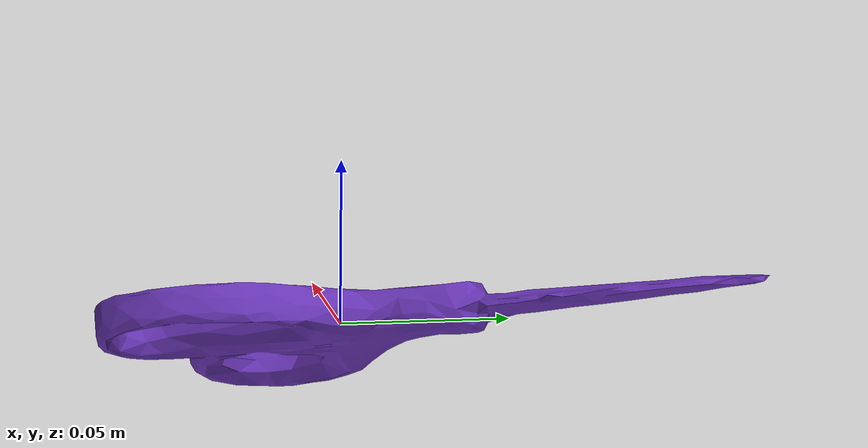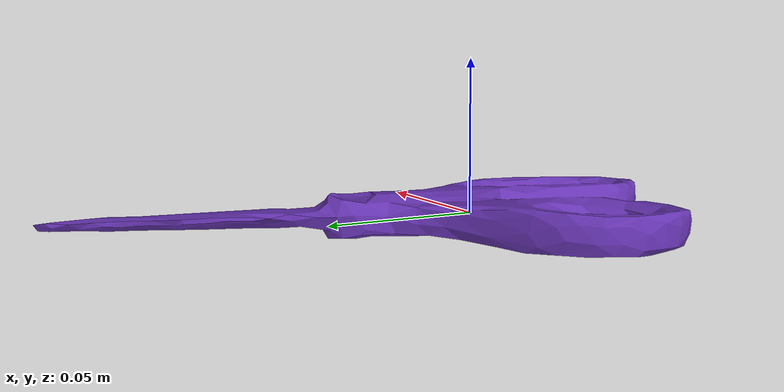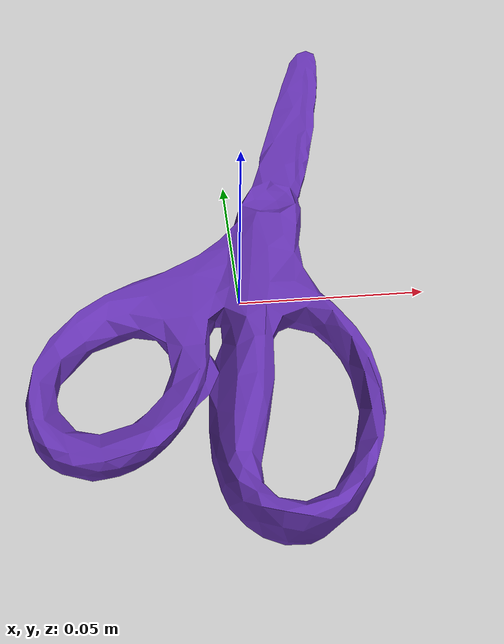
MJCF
<mujoco model="top_watertight_tiny">

  <asset>
    <mesh file="top_watertight_tiny.obj"/>
    <mesh file="top_watertight_tiny_collision_0.obj"/>
    <mesh file="top_watertight_tiny_collision_1.obj"/>
    <mesh file="top_watertight_tiny_collision_2.obj"/>
    <mesh file="top_watertight_tiny_collision_3.obj"/>
    <mesh file="top_watertight_tiny_collision_4.obj"/>
    <mesh file="top_watertight_tiny_collision_5.obj"/>
    <mesh file="top_watertight_tiny_collision_6.obj"/>
    <mesh file="top_watertight_tiny_collision_7.obj"/>
    <mesh file="top_watertight_tiny_collision_8.obj"/>
    <mesh file="top_watertight_tiny_collision_9.obj"/>
    <mesh file="top_watertight_tiny_collision_10.obj"/>
    <mesh file="top_watertight_tiny_collision_11.obj"/>
    <mesh file="top_watertight_tiny_collision_12.obj"/>
    <mesh file="top_watertight_tiny_collision_13.obj"/>
    <mesh file="top_watertight_tiny_collision_14.obj"/>
    <mesh file="top_watertight_tiny_collision_15.obj"/>
  </asset>
  <worldbody>
    <body name="top_watertight_tiny">
      <freejoint/>
      <geom solimp="0.90 0.95 0.001" solref="0.02 1.0" density="100" friction="0.95 0.4 0.3" rgba="0.4 0.2 0.7 1" mesh="top_watertight_tiny" group="2" type="mesh" contype="0" conaffinity="0"/>
      <geom solimp="0.90 0.95 0.001" solref="0.02 1.0" density="100" friction="0.95 0.4 0.3" mesh="top_watertight_tiny_collision_0" rgba="0.46699444192200745 0.758205499335103 0.1888078183152866 1" group="3" type="mesh"/>
      <geom solimp="0.90 0.95 0.001" solref="0.02 1.0" density="100" friction="0.95 0.4 0.3" mesh="top_watertight_tiny_collision_1" rgba="0.5027118984922646 0.4166534743924737 0.3491719159814285 1" group="3" type="mesh"/>
      <geom solimp="0.90 0.95 0.001" solref="0.02 1.0" density="100" friction="0.95 0.4 0.3" mesh="top_watertight_tiny_collision_2" rgba="0.3120309630523672 0.23858111589095643 0.5475314645999473 1" group="3" type="mesh"/>
      <geom solimp="0.90 0.95 0.001" solref="0.02 1.0" density="100" friction="0.95 0.4 0.3" mesh="top_watertight_tiny_collision_3" rgba="0.3475927243002158 0.6423742442776809 0.12115110801038731 1" group="3" type="mesh"/>
      <geom solimp="0.90 0.95 0.001" solref="0.02 1.0" density="100" friction="0.95 0.4 0.3" mesh="top_watertight_tiny_collision_4" rgba="0.6504096284476759 0.8941694752581075 0.5558063659407794 1" group="3" type="mesh"/>
      <geom solimp="0.90 0.95 0.001" solref="0.02 1.0" density="100" friction="0.95 0.4 0.3" mesh="top_watertight_tiny_collision_5" rgba="0.4229087593943701 0.5702530231551515 0.6580476839876298 1" group="3" type="mesh"/>
      <geom solimp="0.90 0.95 0.001" solref="0.02 1.0" density="100" friction="0.95 0.4 0.3" mesh="top_watertight_tiny_collision_6" rgba="0.05939207730861107 0.12323380654313398 0.6530605058995487 1" group="3" type="mesh"/>
      <geom solimp="0.90 0.95 0.001" solref="0.02 1.0" density="100" friction="0.95 0.4 0.3" mesh="top_watertight_tiny_collision_7" rgba="0.27016025532798715 0.172781073009599 0.4631598855594675 1" group="3" type="mesh"/>
      <geom solimp="0.90 0.95 0.001" solref="0.02 1.0" density="100" friction="0.95 0.4 0.3" mesh="top_watertight_tiny_collision_8" rgba="0.603378132804219 0.861331847972092 0.1117391608164523 1" group="3" type="mesh"/>
      <geom solimp="0.90 0.95 0.001" solref="0.02 1.0" density="100" friction="0.95 0.4 0.3" mesh="top_watertight_tiny_collision_9" rgba="0.09452982711112612 0.19178025207502902 0.9453928990401756 1" group="3" type="mesh"/>
      <geom solimp="0.90 0.95 0.001" solref="0.02 1.0" density="100" friction="0.95 0.4 0.3" mesh="top_watertight_tiny_collision_10" rgba="0.4302231938975224 0.3595874157265352 0.5868850603204757 1" group="3" type="mesh"/>
      <geom solimp="0.90 0.95 0.001" solref="0.02 1.0" density="100" friction="0.95 0.4 0.3" mesh="top_watertight_tiny_collision_11" rgba="0.22152060716412958 0.4528621657466747 0.3219119157818636 1" group="3" type="mesh"/>
      <geom solimp="0.90 0.95 0.001" solref="0.02 1.0" density="100" friction="0.95 0.4 0.3" mesh="top_watertight_tiny_collision_12" rgba="0.3932459666277043 0.9316616180399867 0.43986986084739776 1" group="3" type="mesh"/>
      <geom solimp="0.90 0.95 0.001" solref="0.02 1.0" density="100" friction="0.95 0.4 0.3" mesh="top_watertight_tiny_collision_13" rgba="0.6751351118350254 0.33298611484803553 0.945856942308258 1" group="3" type="mesh"/>
      <geom solimp="0.90 0.95 0.001" solref="0.02 1.0" density="100" friction="0.95 0.4 0.3" mesh="top_watertight_tiny_collision_14" rgba="0.7048644389055236 0.9010307327768288 0.819421706220779 1" group="3" type="mesh"/>
      <geom solimp="0.90 0.95 0.001" solref="0.02 1.0" density="100" friction="0.95 0.4 0.3" mesh="top_watertight_tiny_collision_15" rgba="0.8158386560553973 0.9874770157854409 0.6119262403152483 1" group="3" type="mesh"/>
    </body>
  </worldbody>
</mujoco>
